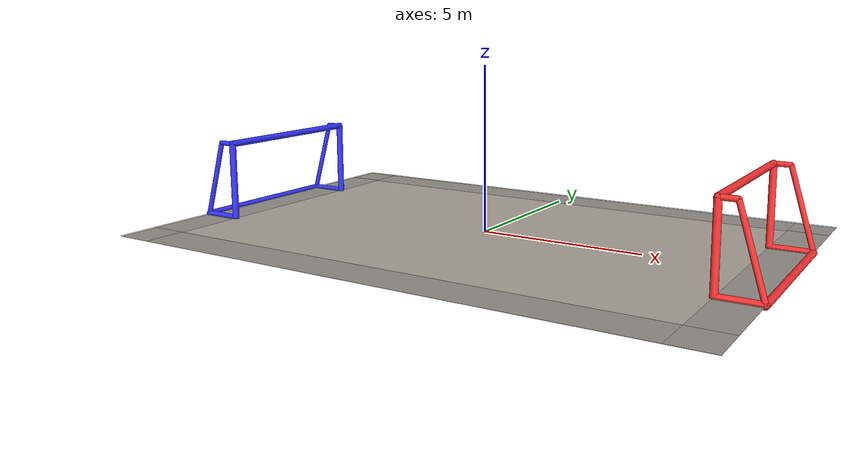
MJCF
<mujoco model="pitch">

  <compiler boundmass="1e-5" boundinertia="1e-11" coordinate="local" angle="radian" eulerseq="xyz"/>
  <option timestep="0.002" cone="elliptic" noslip_iterations="5" noslip_tolerance="0"/>

  <visual>
    <quality shadowsize="8192"/>
    <headlight ambient="0.3 0.3 0.3" diffuse="0.6 0.6 0.6" specular="0 0 0"/>
    <map znear="0.1111" zfar="45"/>
    <scale forcewidth="0.01" contactwidth="0.06" contactheight="0.01" jointwidth="0.01" framelength="0.3" framewidth="0.01"/>
  </visual>

  <statistic extent="0.9" center="0 0 0.9"/>

  <default>
    <geom condim="3" friction="1 0.5 0.5" solimp=".9 .99 .003" solref=".015 1"/>
    <joint limited="true" damping="1" armature="0.01"/>
    <default class="home_goal">
      <geom rgba="0.2 0.2 1 1"/>
    </default>
    <default class="away_goal">
      <geom rgba="1 0.2 0.2 1"/>
    </default>
    <default class="field">
      <geom rgba="1 1 1 1"/>
    </default>
  </default>

  <asset>
    <texture name="skybox" type="skybox" builtin="gradient" rgb1="0.7 0.9 0.9" rgb2="0.03 0.09 0.27" width="400" height="400"/>
    <texture name="fieldplane" type="2d" file="pitchImage.png"/>
    <material name="fieldplane" texture="fieldplane"/>
  </asset>

  <worldbody>
    <light name="light_0" pos="-9 -6 5" dir="9 6 -10" cutoff="60"/>
    <light name="light_1" pos="-9 6 5" dir="9 -6 -10" cutoff="60"/>
    <light name="light_2" pos="9 -6 5" dir="-9 6 -10" cutoff="60"/>
    <light name="light_3" pos="9 6 5" dir="-9 -6 -10" cutoff="60"/>

    <camera name="top_down" fovy="11.89" pos="0 0 95" zaxis="0 0 1"/>

    <!-- Static ground and boundaries -->
    <geom name="ground" type="plane" size="9 6 0.09" material="fieldplane"/>
    <geom name="bound_1" type="box" contype="0" conaffinity="0" size="0.6 0.6 0.01" pos="-8.4 -5.4 0" rgba="0.5 0.5 0.5 0.3"/>
    <geom name="bound_2" type="box" contype="0" conaffinity="0" size="0.6 4.8 0.01" pos="-8.4 0 0" rgba="0.5 0.5 0.5 0.3"/>
    <geom name="bound_3" type="box" contype="0" conaffinity="0" size="0.6 0.6 0.01" pos="-8.4 5.4 0" rgba="0.5 0.5 0.5 0.3"/>
    <geom name="bound_4" type="box" contype="0" conaffinity="0" size="7.8 0.6 0.01" pos="0 -5.4 0" rgba="0.5 0.5 0.5 0.3"/>
    <geom name="bound_5" type="box" contype="0" conaffinity="0" size="7.8 0.6 0.01" pos="0 5.4 0" rgba="0.5 0.5 0.5 0.3"/>
    <geom name="bound_6" type="box" contype="0" conaffinity="0" size="0.6 0.6 0.01" pos="8.4 -5.4 0" rgba="0.5 0.5 0.5 0.3"/>
    <geom name="bound_7" type="box" contype="0" conaffinity="0" size="0.6 4.8 0.01" pos="8.4 0 0" rgba="0.5 0.5 0.5 0.3"/>
    <geom name="bound_8" type="box" contype="0" conaffinity="0" size="0.6 0.6 0.01" pos="8.4 5.4 0" rgba="0.5 0.5 0.5 0.3"/>

    <!-- Root body with mass properties -->
    <body name="root" pos="0 0 0">
      <joint type="free"/>
      <inertial pos="0 0 0" mass="1" diaginertia="1 1 1"/>

      <!-- Home Goal -->
      <body name="home_goal" pos="-8.4 0 0">
        <inertial pos="0 0 1.2" mass="10" diaginertia="10 10 10"/>
        <site name="home_goal/detection_zone" type="box" group="4" rgba="0.2 0.2 1 0.5" size="0.6 2.6 1.2" pos="0 0 1.2"/>
        <site name="home_goal/lower" group="4" rgba="0.2 0.2 1 0.5" size="0.05" pos="-0.6 -2.6 0"/>
        <site name="home_goal/mid" group="4" rgba="0.2 0.2 1 0.5" size="0.05" pos="0 0 1.2"/>
        <site name="home_goal/upper" group="4" rgba="0.2 0.2 1 0.5" size="0.05" pos="0.6 2.6 2.4"/>

        <geom name="home_goal/right_post" class="home_goal" type="capsule" size="0.1027" fromto="0.6 -2.6 0 0.6 -2.6 2.4"/>
        <geom name="home_goal/left_post" class="home_goal" type="capsule" size="0.1027" fromto="0.6 2.6 0 0.6 2.6 2.4"/>
        <geom name="home_goal/top_post" class="home_goal" type="capsule" size="0.1037" fromto="0.6 -2.6 2.4 0.6 2.6 2.4"/>
        <geom name="home_goal/right_base" class="home_goal" type="capsule" size="0.1027" fromto="0.6 -2.6 0 -0.6 -2.6 0"/>
        <geom name="home_goal/left_base" class="home_goal" type="capsule" size="0.1027" fromto="0.6 2.6 0 -0.6 2.6 0"/>
        <geom name="home_goal/back_base" class="home_goal" type="capsule" size="0.1027" fromto="-0.6 -2.6 0 -0.6 2.6 0"/>

        <geom name="home_goal/right_support" class="home_goal" type="capsule" size="0.077" fromto="-0.6 -2.6 0 0.12 -2.6 2.4"/>
        <geom name="home_goal/right_top_support" class="home_goal" type="capsule" size="0.0778" fromto="0.12 -2.6 2.4 0.6 -2.6 2.4"/>
        <geom name="home_goal/left_support" class="home_goal" type="capsule" size="0.077" fromto="-0.6 2.6 0 0.12 2.6 2.4"/>
        <geom name="home_goal/left_top_support" class="home_goal" type="capsule" size="0.0778" fromto="0.12 2.6 2.4 0.6 2.6 2.4"/>
      </body>

      <!-- Away Goal -->
      <body name="away_goal" pos="8.4 0 0">
        <inertial pos="0 0 1.2" mass="10" diaginertia="10 10 10"/>
        <site name="away_goal/detection_zone" type="box" group="4" rgba="1 0.2 0.2 0.5" size="0.6 2.6 1.2" pos="0 0 1.2"/>
        <site name="away_goal/lower" group="4" rgba="1 0.2 0.2 0.5" size="0.05" pos="-0.6 -2.6 0"/>
        <site name="away_goal/mid" group="4" rgba="1 0.2 0.2 0.5" size="0.05" pos="0 0 1.2"/>
        <site name="away_goal/upper" group="4" rgba="1 0.2 0.2 0.5" size="0.05" pos="0.6 2.6 2.4"/>

        <geom name="away_goal/right_post" class="away_goal" type="capsule" size="0.1027" fromto="-0.6 2.6 0 -0.6 2.6 2.4"/>
        <geom name="away_goal/left_post" class="away_goal" type="capsule" size="0.1027" fromto="-0.6 -2.6 0 -0.6 -2.6 2.4"/>
        <geom name="away_goal/top_post" class="away_goal" type="capsule" size="0.1037" fromto="-0.6 2.6 2.4 -0.6 -2.6 2.4"/>
        <geom name="away_goal/right_base" class="away_goal" type="capsule" size="0.1027" fromto="-0.6 2.6 0 0.6 2.6 0"/>
        <geom name="away_goal/left_base" class="away_goal" type="capsule" size="0.1027" fromto="-0.6 -2.6 0 0.6 -2.6 0"/>
        <geom name="away_goal/back_base" class="away_goal" type="capsule" size="0.1027" fromto="0.6 2.6 0 0.6 -2.6 0"/>

        <geom name="away_goal/right_support" class="away_goal" type="capsule" size="0.077" fromto="0.6 2.6 0 -0.12 2.6 2.4"/>
        <geom name="away_goal/right_top_support" class="away_goal" type="capsule" size="0.0778" fromto="-0.12 2.6 2.4 -0.6 2.6 2.4"/>
        <geom name="away_goal/left_support" class="away_goal" type="capsule" size="0.077" fromto="0.6 -2.6 0 -0.12 -2.6 2.4"/>
        <geom name="away_goal/left_top_support" class="away_goal" type="capsule" size="0.0778" fromto="-0.12 -2.6 2.4 -0.6 -2.6 2.4"/>
      </body>

      <!-- Field -->
      <body name="field" pos="0 0 0">
        <inertial pos="0 0 0" mass="1" diaginertia="1 1 1"/>
        <site name="field/detection_zone" class="field" type="box" group="4" size="7.8 4.8 0.01"/>
        <site name="field/lower" class="field" group="4" size="0.05" pos="-7.8 -4.8 0"/>
        <site name="field/mid" class="field" group="4" size="0.05" pos="0 0 0"/>
        <site name="field/upper" class="field" group="4" size="0.05" pos="7.8 4.8 0"/>
      </body>
    </body>
  </worldbody>

  <sensor>
    <framepos name="home_goal/home_goal_lower" objtype="site" objname="home_goal/lower"/>
    <framepos name="home_goal/home_goal_mid" objtype="site" objname="home_goal/mid"/>
    <framepos name="home_goal/home_goal_upper" objtype="site" objname="home_goal/upper"/>
    <framepos name="away_goal/away_goal_lower" objtype="site" objname="away_goal/lower"/>
    <framepos name="away_goal/away_goal_mid" objtype="site" objname="away_goal/mid"/>
    <framepos name="away_goal/away_goal_upper" objtype="site" objname="away_goal/upper"/>
    <framepos name="field/field_lower" objtype="site" objname="field/lower"/>
    <framepos name="field/field_mid" objtype="site" objname="field/mid"/>
    <framepos name="field/field_upper" objtype="site" objname="field/upper"/>
  </sensor>
</mujoco>
